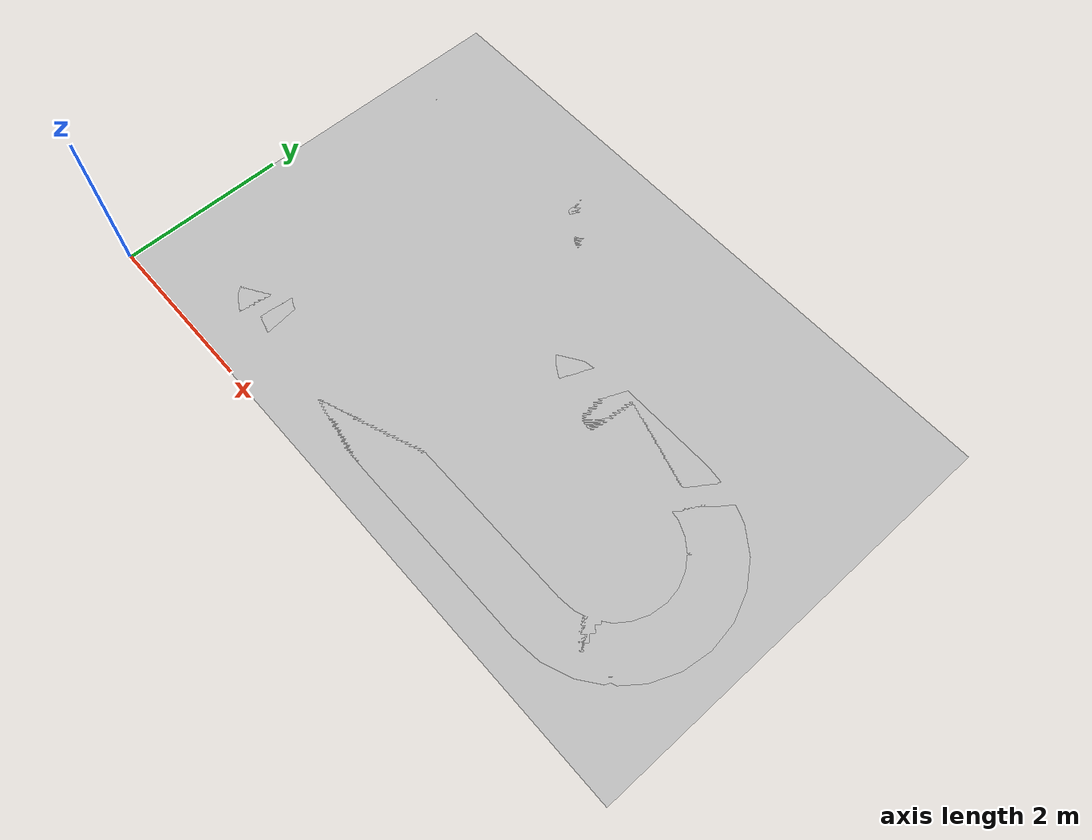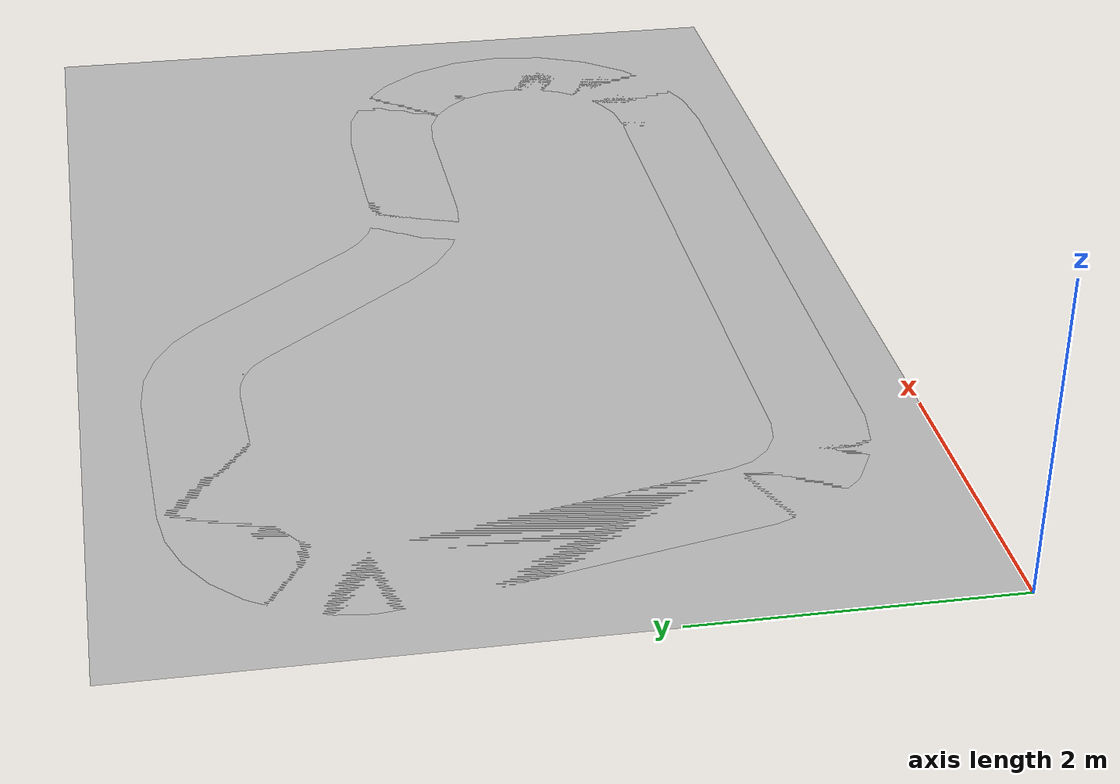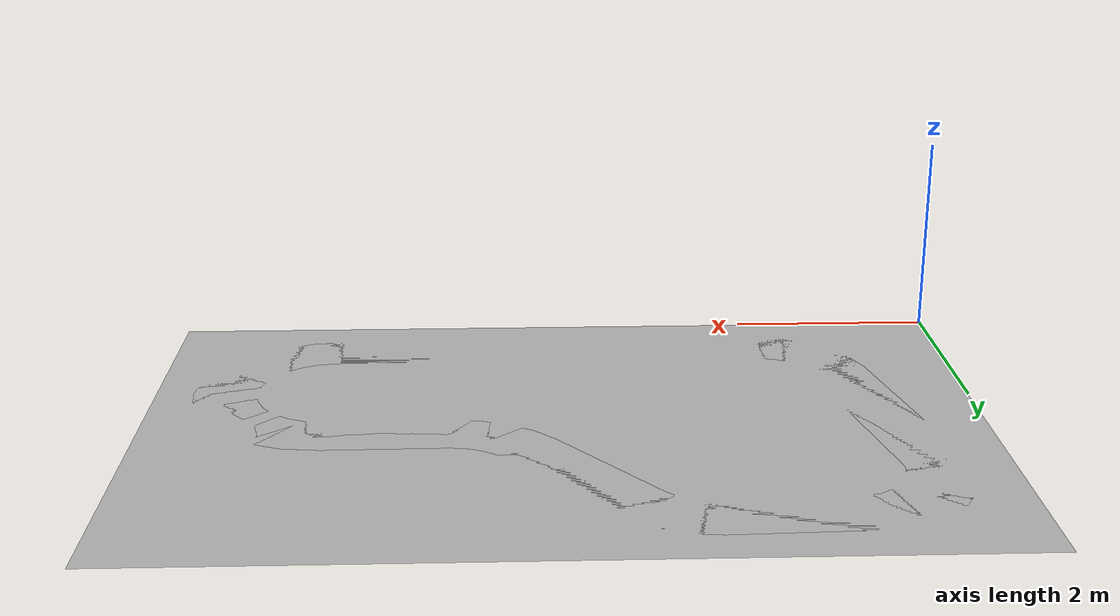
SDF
<?xml version='1.0'?>
<sdf version='1.4'>
  <model name="grass_asphalt">
    <link name="fieldLink">
      <collision name="collision">
        <pose>0 0 0 0 0 0</pose>
        <geometry>
          <mesh>
            <uri>model://meshes/reinvent/field.dae</uri>
          </mesh>
        </geometry>
      </collision>
      <visual name="visual">
        <pose>0 0 0 0 0 0</pose>
        <geometry>
          <mesh>
            <uri>model://meshes/reinvent/field.dae</uri>
          </mesh>
        </geometry>
      </visual>
    </link>
    <link name="roadLink">
      <collision name="collision">
        <pose>0 0 0.0 0 0 0</pose>
        <geometry>
          <mesh>
            <uri>model://meshes/reinvent/road.dae</uri>
          </mesh>
        </geometry>
      </collision>
      <visual name="visual">
        <pose>0 0 0.0 0 0 0</pose>
        <geometry>
          <mesh>
            <uri>model://meshes/reinvent/road.dae</uri>
          </mesh>
        </geometry>
      </visual>
    </link>
    <static>1</static>
  </model>
</sdf>
